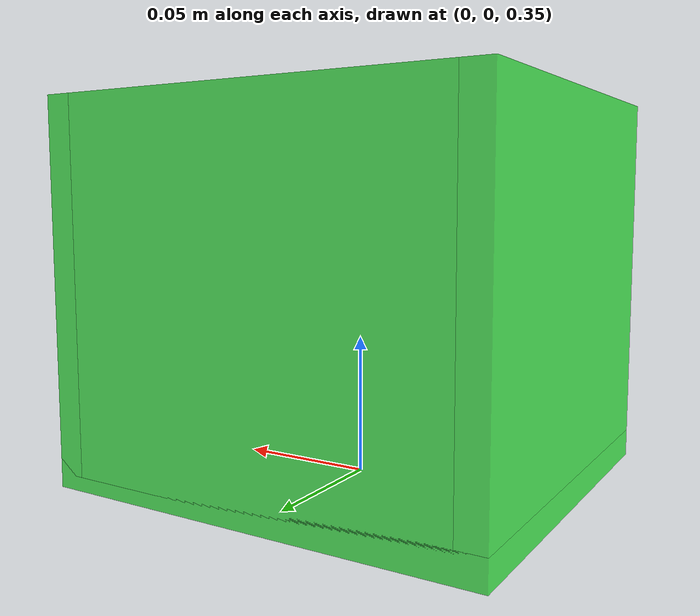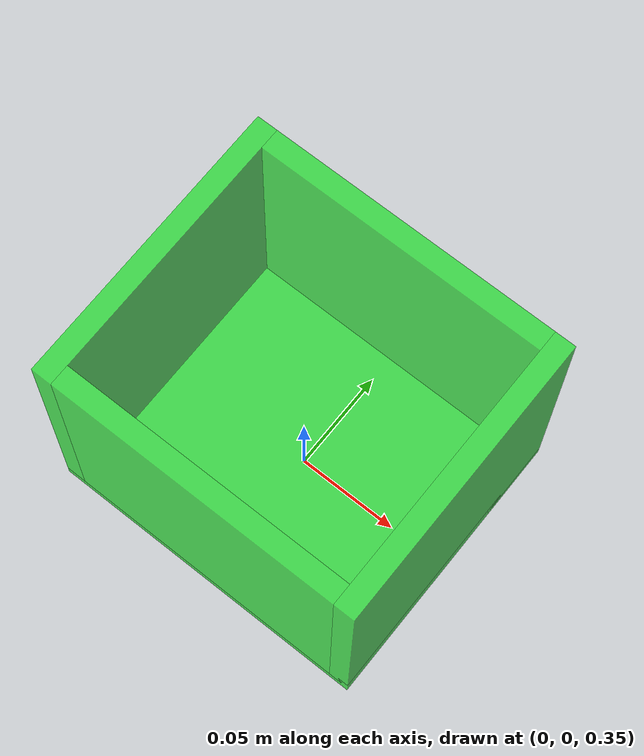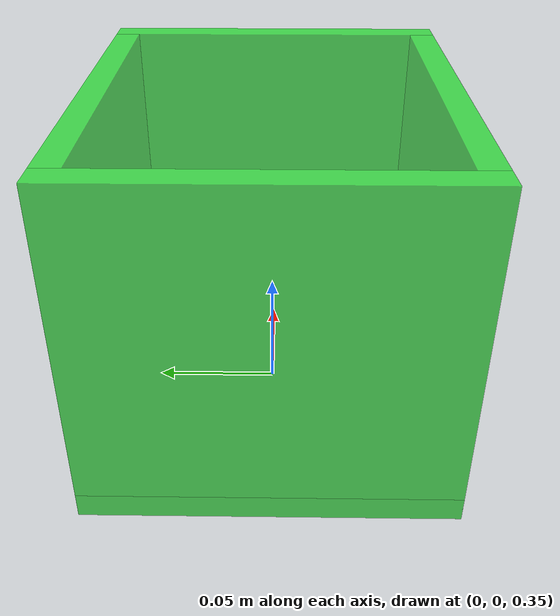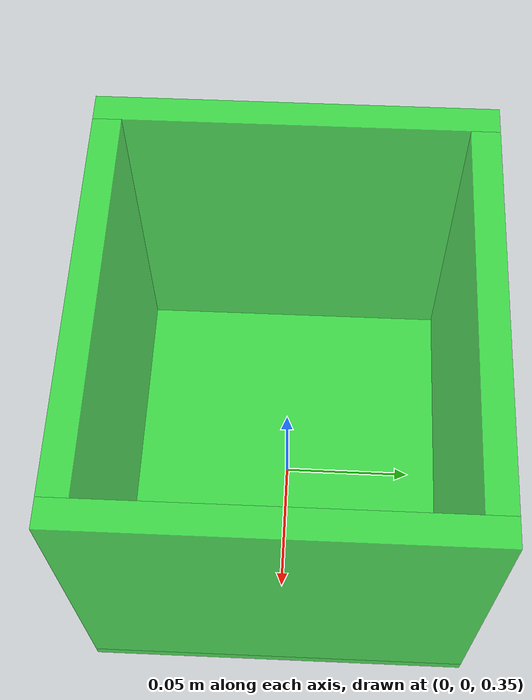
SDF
<?xml version="1.0"?>
<sdf version="1.9">
  <model name="sorting_container_green">
    <static>true</static>
    <link name="container">
      <!--
        Interior: 0.14 x 0.12 x 0.125 m.
        Exterior: 0.16 x 0.14 x 0.135 m.
        The bottom rests on the z=0.35 tabletop when the model pose is z=0.
      -->
      <collision name="bottom_collision">
        <pose>0 0 0.355 0 0 0</pose>
        <geometry><box><size>0.16 0.14 0.01</size></box></geometry>
      </collision>
      <collision name="left_wall_collision">
        <pose>-0.075 0 0.42 0 0 0</pose>
        <geometry><box><size>0.01 0.14 0.13</size></box></geometry>
      </collision>
      <collision name="right_wall_collision">
        <pose>0.075 0 0.42 0 0 0</pose>
        <geometry><box><size>0.01 0.14 0.13</size></box></geometry>
      </collision>
      <collision name="front_wall_collision">
        <pose>0 -0.065 0.42 0 0 0</pose>
        <geometry><box><size>0.14 0.01 0.13</size></box></geometry>
      </collision>
      <collision name="back_wall_collision">
        <pose>0 0.065 0.42 0 0 0</pose>
        <geometry><box><size>0.14 0.01 0.13</size></box></geometry>
      </collision>

      <!-- Green plastic with 30 percent visual transparency. -->
      <visual name="bottom_visual">
        <pose>0 0 0.355 0 0 0</pose>
        <geometry><box><size>0.16 0.14 0.01</size></box></geometry>
        <transparency>0.30</transparency>
        <material>
          <ambient>0.02 0.35 0.04 0.70</ambient>
          <diffuse>0.05 0.90 0.10 0.70</diffuse>
          <specular>0.18 0.45 0.20 0.70</specular>
        </material>
      </visual>
      <visual name="left_wall_visual">
        <pose>-0.075 0 0.42 0 0 0</pose>
        <geometry><box><size>0.01 0.14 0.13</size></box></geometry>
        <transparency>0.30</transparency>
        <material>
          <ambient>0.02 0.35 0.04 0.70</ambient>
          <diffuse>0.05 0.90 0.10 0.70</diffuse>
          <specular>0.18 0.45 0.20 0.70</specular>
        </material>
      </visual>
      <visual name="right_wall_visual">
        <pose>0.075 0 0.42 0 0 0</pose>
        <geometry><box><size>0.01 0.14 0.13</size></box></geometry>
        <transparency>0.30</transparency>
        <material>
          <ambient>0.02 0.35 0.04 0.70</ambient>
          <diffuse>0.05 0.90 0.10 0.70</diffuse>
          <specular>0.18 0.45 0.20 0.70</specular>
        </material>
      </visual>
      <visual name="front_wall_visual">
        <pose>0 -0.065 0.42 0 0 0</pose>
        <geometry><box><size>0.14 0.01 0.13</size></box></geometry>
        <transparency>0.30</transparency>
        <material>
          <ambient>0.02 0.35 0.04 0.70</ambient>
          <diffuse>0.05 0.90 0.10 0.70</diffuse>
          <specular>0.18 0.45 0.20 0.70</specular>
        </material>
      </visual>
      <visual name="back_wall_visual">
        <pose>0 0.065 0.42 0 0 0</pose>
        <geometry><box><size>0.14 0.01 0.13</size></box></geometry>
        <transparency>0.30</transparency>
        <material>
          <ambient>0.02 0.35 0.04 0.70</ambient>
          <diffuse>0.05 0.90 0.10 0.70</diffuse>
          <specular>0.18 0.45 0.20 0.70</specular>
        </material>
      </visual>
    </link>
  </model>
</sdf>
